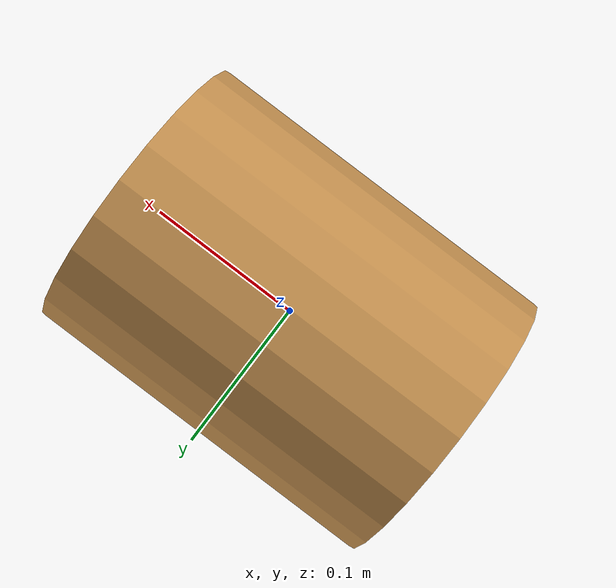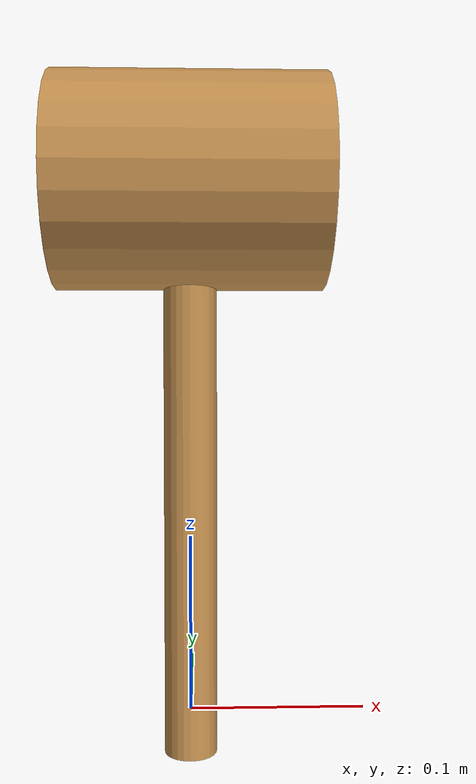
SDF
<?xml version="1.0"?>
<sdf version="1.7">
  <model name="hammer">
    <static>false</static>

    <link name="hammer_link">
      <!-- Rough inertial properties (good enough for simulation) -->
      <inertial>
        <mass>1.0</mass>
        <inertia>
          <ixx>0.01</ixx>
          <iyy>0.01</iyy>
          <izz>0.01</izz>
          <ixy>0.0</ixy>
          <ixz>0.0</ixz>
          <iyz>0.0</iyz>
        </inertia>
      </inertial>

      <!-- Handle: long thin cylinder, centered along +z -->
      <visual name="handle_visual">
        <!-- x y z roll pitch yaw -->
        <pose>0 0 0.15 0 0 0</pose>
        <geometry>
          <cylinder>
            <radius>0.015</radius>
            <length>0.35</length>
          </cylinder>
        </geometry>
        <material>
          <ambient>0.75 0.55 0.3 1</ambient>
          <diffuse>0.75 0.55 0.3 1</diffuse>
        </material>
      </visual>

      <collision name="handle_collision">
        <pose>0 0 0.15 0 0 0</pose>
        <geometry>
          <cylinder>
            <radius>0.015</radius>
            <length>0.35</length>
          </cylinder>
        </geometry>
      </collision>

      <!-- Head: short, fat cylinder at the top of the handle -->
      <visual name="head_visual">
        <pose>0 0 0.3 0 1.5708 0</pose>
        <geometry>
          <cylinder>
            <radius>0.06</radius>
            <length>0.15</length>
          </cylinder>
        </geometry>
        <material>
          <ambient>0.75 0.55 0.3 1</ambient>
          <diffuse>0.75 0.55 0.3 1</diffuse>
        </material>
      </visual>

      <collision name="head_collision">
        <pose>0 0 0.3 0 1.5708 0</pose>
        <geometry>
          <cylinder>
            <radius>0.06</radius>
            <length>0.15</length>
          </cylinder>
        </geometry>
      </collision>

    </link>
  </model>
</sdf>
